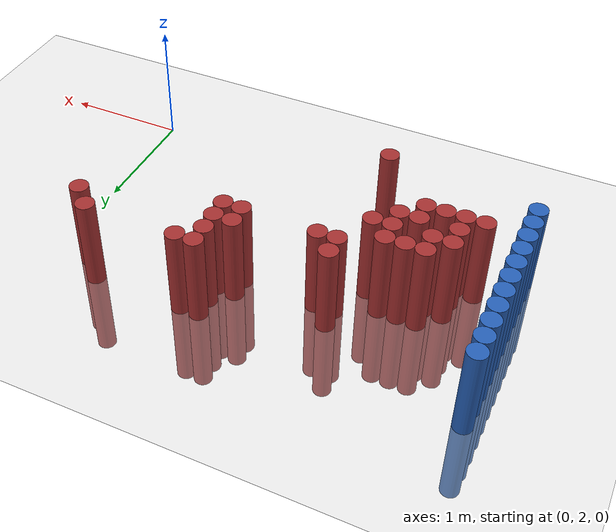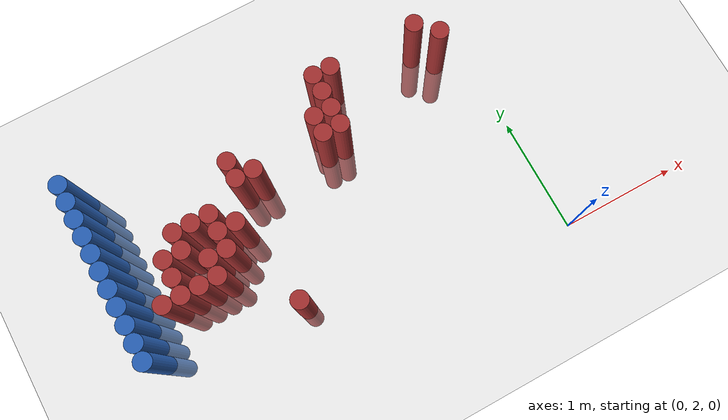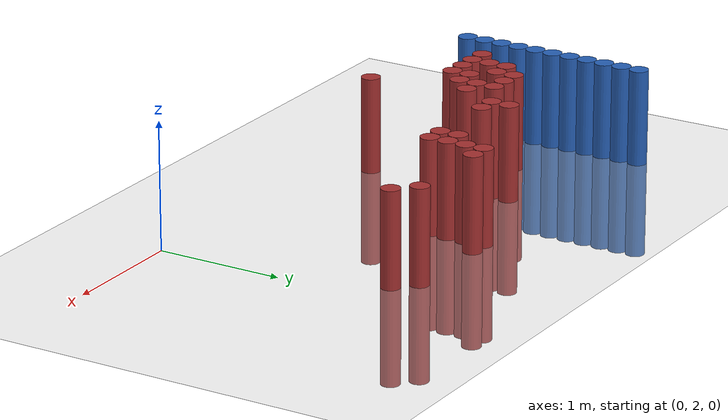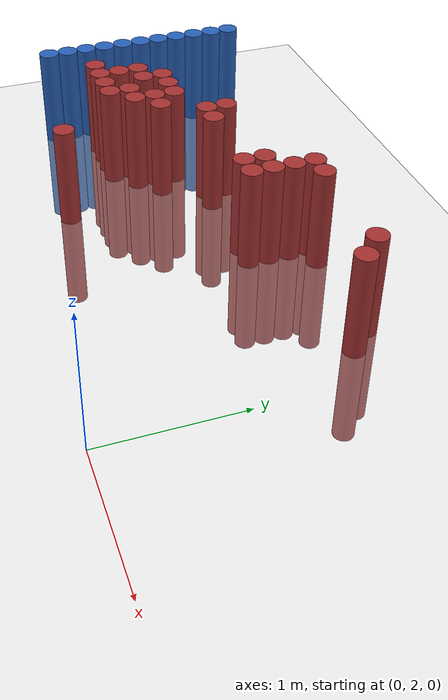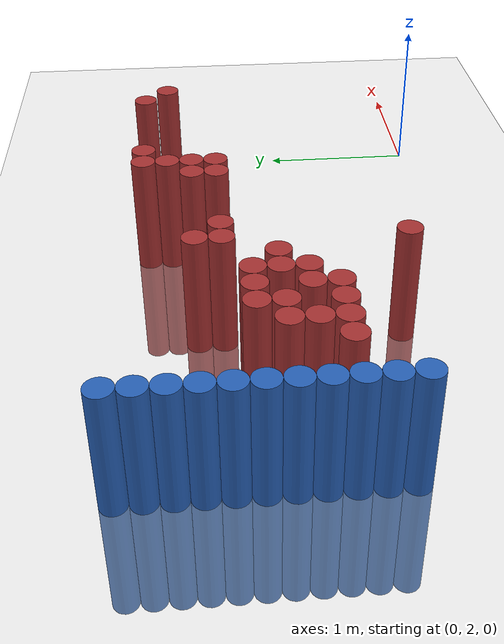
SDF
<sdf version="1.6">
 <world name="default">
  <model name="ground_plane">
   <static>1</static>
   <link name="link">
    <collision name="collision">
     <geometry><plane><normal>0 0 1</normal><size>100 100</size></plane></geometry>
     <surface><friction><ode><mu>100</mu><mu2>50</mu2></ode></friction></surface>
    </collision>
    <visual name="visual">
     <cast_shadows>0</cast_shadows>
     <geometry><plane><normal>0 0 1</normal><size>100 100</size></plane></geometry>
     <material>
      <script><uri>file://media/materials/scripts/gazebo.material</uri><name>Gazebo/Grey</name></script>
     </material>
    </visual>
   </link>
  </model>
  <model name="unit_cylinder_149">
   <static>1</static>
   <pose>-3.425000 2.575000 0.000000 0.000000 0.000000 0.000000</pose>
   <link name="link">
    <inertial>
     <mass>1</mass>
     <inertia><ixx>0.145833</ixx><ixy>0</ixy><ixz>0</ixz><iyy>0.145833</iyy><iyz>0</iyz><izz>0.125</izz></inertia>
    </inertial>
    <collision name="collision">
     <geometry><cylinder><radius>0.075000</radius><length>1.5</length></cylinder></geometry>
    </collision>
    <visual name="visual">
     <geometry><cylinder><radius>0.075000</radius><length>1.5</length></cylinder></geometry>
     <material>
      <ambient>0.152000 0.379000 0.720000 1</ambient>
      <diffuse>0.152000 0.379000 0.720000 1</diffuse>
     </material>
     <material>
      <script><name>Gazebo/Grey</name><uri>file://media/materials/scripts/gazebo.material</uri></script>
     </material>
    </visual>
   </link>
  </model>
  <model name="unit_cylinder_151">
   <static>1</static>
   <pose>-3.425000 2.725000 0.000000 0.000000 0.000000 0.000000</pose>
   <link name="link">
    <inertial>
     <mass>1</mass>
     <inertia><ixx>0.145833</ixx><ixy>0</ixy><ixz>0</ixz><iyy>0.145833</iyy><iyz>0</iyz><izz>0.125</izz></inertia>
    </inertial>
    <collision name="collision">
     <geometry><cylinder><radius>0.075000</radius><length>1.5</length></cylinder></geometry>
    </collision>
    <visual name="visual">
     <geometry><cylinder><radius>0.075000</radius><length>1.5</length></cylinder></geometry>
     <material>
      <ambient>0.152000 0.379000 0.720000 1</ambient>
      <diffuse>0.152000 0.379000 0.720000 1</diffuse>
     </material>
     <material>
      <script><name>Gazebo/Grey</name><uri>file://media/materials/scripts/gazebo.material</uri></script>
     </material>
    </visual>
   </link>
  </model>
  <model name="unit_cylinder_153">
   <static>1</static>
   <pose>-3.425000 2.875000 0.000000 0.000000 0.000000 0.000000</pose>
   <link name="link">
    <inertial>
     <mass>1</mass>
     <inertia><ixx>0.145833</ixx><ixy>0</ixy><ixz>0</ixz><iyy>0.145833</iyy><iyz>0</iyz><izz>0.125</izz></inertia>
    </inertial>
    <collision name="collision">
     <geometry><cylinder><radius>0.075000</radius><length>1.5</length></cylinder></geometry>
    </collision>
    <visual name="visual">
     <geometry><cylinder><radius>0.075000</radius><length>1.5</length></cylinder></geometry>
     <material>
      <ambient>0.152000 0.379000 0.720000 1</ambient>
      <diffuse>0.152000 0.379000 0.720000 1</diffuse>
     </material>
     <material>
      <script><name>Gazebo/Grey</name><uri>file://media/materials/scripts/gazebo.material</uri></script>
     </material>
    </visual>
   </link>
  </model>
  <model name="unit_cylinder_155">
   <static>1</static>
   <pose>-3.425000 3.025000 0.000000 0.000000 0.000000 0.000000</pose>
   <link name="link">
    <inertial>
     <mass>1</mass>
     <inertia><ixx>0.145833</ixx><ixy>0</ixy><ixz>0</ixz><iyy>0.145833</iyy><iyz>0</iyz><izz>0.125</izz></inertia>
    </inertial>
    <collision name="collision">
     <geometry><cylinder><radius>0.075000</radius><length>1.5</length></cylinder></geometry>
    </collision>
    <visual name="visual">
     <geometry><cylinder><radius>0.075000</radius><length>1.5</length></cylinder></geometry>
     <material>
      <ambient>0.152000 0.379000 0.720000 1</ambient>
      <diffuse>0.152000 0.379000 0.720000 1</diffuse>
     </material>
     <material>
      <script><name>Gazebo/Grey</name><uri>file://media/materials/scripts/gazebo.material</uri></script>
     </material>
    </visual>
   </link>
  </model>
  <model name="unit_cylinder_157">
   <static>1</static>
   <pose>-3.425000 3.175000 0.000000 0.000000 0.000000 0.000000</pose>
   <link name="link">
    <inertial>
     <mass>1</mass>
     <inertia><ixx>0.145833</ixx><ixy>0</ixy><ixz>0</ixz><iyy>0.145833</iyy><iyz>0</iyz><izz>0.125</izz></inertia>
    </inertial>
    <collision name="collision">
     <geometry><cylinder><radius>0.075000</radius><length>1.5</length></cylinder></geometry>
    </collision>
    <visual name="visual">
     <geometry><cylinder><radius>0.075000</radius><length>1.5</length></cylinder></geometry>
     <material>
      <ambient>0.152000 0.379000 0.720000 1</ambient>
      <diffuse>0.152000 0.379000 0.720000 1</diffuse>
     </material>
     <material>
      <script><name>Gazebo/Grey</name><uri>file://media/materials/scripts/gazebo.material</uri></script>
     </material>
    </visual>
   </link>
  </model>
  <model name="unit_cylinder_159">
   <static>1</static>
   <pose>-3.425000 3.325000 0.000000 0.000000 0.000000 0.000000</pose>
   <link name="link">
    <inertial>
     <mass>1</mass>
     <inertia><ixx>0.145833</ixx><ixy>0</ixy><ixz>0</ixz><iyy>0.145833</iyy><iyz>0</iyz><izz>0.125</izz></inertia>
    </inertial>
    <collision name="collision">
     <geometry><cylinder><radius>0.075000</radius><length>1.5</length></cylinder></geometry>
    </collision>
    <visual name="visual">
     <geometry><cylinder><radius>0.075000</radius><length>1.5</length></cylinder></geometry>
     <material>
      <ambient>0.152000 0.379000 0.720000 1</ambient>
      <diffuse>0.152000 0.379000 0.720000 1</diffuse>
     </material>
     <material>
      <script><name>Gazebo/Grey</name><uri>file://media/materials/scripts/gazebo.material</uri></script>
     </material>
    </visual>
   </link>
  </model>
  <model name="unit_cylinder_161">
   <static>1</static>
   <pose>-3.425000 3.475000 0.000000 0.000000 0.000000 0.000000</pose>
   <link name="link">
    <inertial>
     <mass>1</mass>
     <inertia><ixx>0.145833</ixx><ixy>0</ixy><ixz>0</ixz><iyy>0.145833</iyy><iyz>0</iyz><izz>0.125</izz></inertia>
    </inertial>
    <collision name="collision">
     <geometry><cylinder><radius>0.075000</radius><length>1.5</length></cylinder></geometry>
    </collision>
    <visual name="visual">
     <geometry><cylinder><radius>0.075000</radius><length>1.5</length></cylinder></geometry>
     <material>
      <ambient>0.152000 0.379000 0.720000 1</ambient>
      <diffuse>0.152000 0.379000 0.720000 1</diffuse>
     </material>
     <material>
      <script><name>Gazebo/Grey</name><uri>file://media/materials/scripts/gazebo.material</uri></script>
     </material>
    </visual>
   </link>
  </model>
  <model name="unit_cylinder_163">
   <static>1</static>
   <pose>-3.425000 3.625000 0.000000 0.000000 0.000000 0.000000</pose>
   <link name="link">
    <inertial>
     <mass>1</mass>
     <inertia><ixx>0.145833</ixx><ixy>0</ixy><ixz>0</ixz><iyy>0.145833</iyy><iyz>0</iyz><izz>0.125</izz></inertia>
    </inertial>
    <collision name="collision">
     <geometry><cylinder><radius>0.075000</radius><length>1.5</length></cylinder></geometry>
    </collision>
    <visual name="visual">
     <geometry><cylinder><radius>0.075000</radius><length>1.5</length></cylinder></geometry>
     <material>
      <ambient>0.152000 0.379000 0.720000 1</ambient>
      <diffuse>0.152000 0.379000 0.720000 1</diffuse>
     </material>
     <material>
      <script><name>Gazebo/Grey</name><uri>file://media/materials/scripts/gazebo.material</uri></script>
     </material>
    </visual>
   </link>
  </model>
  <model name="unit_cylinder_165">
   <static>1</static>
   <pose>-3.425000 3.775000 0.000000 0.000000 0.000000 0.000000</pose>
   <link name="link">
    <inertial>
     <mass>1</mass>
     <inertia><ixx>0.145833</ixx><ixy>0</ixy><ixz>0</ixz><iyy>0.145833</iyy><iyz>0</iyz><izz>0.125</izz></inertia>
    </inertial>
    <collision name="collision">
     <geometry><cylinder><radius>0.075000</radius><length>1.5</length></cylinder></geometry>
    </collision>
    <visual name="visual">
     <geometry><cylinder><radius>0.075000</radius><length>1.5</length></cylinder></geometry>
     <material>
      <ambient>0.152000 0.379000 0.720000 1</ambient>
      <diffuse>0.152000 0.379000 0.720000 1</diffuse>
     </material>
     <material>
      <script><name>Gazebo/Grey</name><uri>file://media/materials/scripts/gazebo.material</uri></script>
     </material>
    </visual>
   </link>
  </model>
  <model name="unit_cylinder_167">
   <static>1</static>
   <pose>-3.425000 3.925000 0.000000 0.000000 0.000000 0.000000</pose>
   <link name="link">
    <inertial>
     <mass>1</mass>
     <inertia><ixx>0.145833</ixx><ixy>0</ixy><ixz>0</ixz><iyy>0.145833</iyy><iyz>0</iyz><izz>0.125</izz></inertia>
    </inertial>
    <collision name="collision">
     <geometry><cylinder><radius>0.075000</radius><length>1.5</length></cylinder></geometry>
    </collision>
    <visual name="visual">
     <geometry><cylinder><radius>0.075000</radius><length>1.5</length></cylinder></geometry>
     <material>
      <ambient>0.152000 0.379000 0.720000 1</ambient>
      <diffuse>0.152000 0.379000 0.720000 1</diffuse>
     </material>
     <material>
      <script><name>Gazebo/Grey</name><uri>file://media/materials/scripts/gazebo.material</uri></script>
     </material>
    </visual>
   </link>
  </model>
  <model name="unit_cylinder_169">
   <static>1</static>
   <pose>-3.425000 4.075000 0.000000 0.000000 0.000000 0.000000</pose>
   <link name="link">
    <inertial>
     <mass>1</mass>
     <inertia><ixx>0.145833</ixx><ixy>0</ixy><ixz>0</ixz><iyy>0.145833</iyy><iyz>0</iyz><izz>0.125</izz></inertia>
    </inertial>
    <collision name="collision">
     <geometry><cylinder><radius>0.075000</radius><length>1.5</length></cylinder></geometry>
    </collision>
    <visual name="visual">
     <geometry><cylinder><radius>0.075000</radius><length>1.5</length></cylinder></geometry>
     <material>
      <ambient>0.152000 0.379000 0.720000 1</ambient>
      <diffuse>0.152000 0.379000 0.720000 1</diffuse>
     </material>
     <material>
      <script><name>Gazebo/Grey</name><uri>file://media/materials/scripts/gazebo.material</uri></script>
     </material>
    </visual>
   </link>
  </model>
  <model name="unit_cylinder_238">
   <static>1</static>
   <pose>-3.425000 2.575000 0.000000 0.000000 0.000000 0.000000</pose>
   <link name="link">
    <inertial>
     <mass>1</mass>
     <inertia><ixx>0.145833</ixx><ixy>0</ixy><ixz>0</ixz><iyy>0.145833</iyy><iyz>0</iyz><izz>0.125</izz></inertia>
    </inertial>
    <collision name="collision">
     <geometry><cylinder><radius>0.075000</radius><length>1.5</length></cylinder></geometry>
    </collision>
    <visual name="visual">
     <geometry><cylinder><radius>0.075000</radius><length>1.5</length></cylinder></geometry>
     <material>
      <ambient>0.152000 0.379000 0.720000 1</ambient>
      <diffuse>0.152000 0.379000 0.720000 1</diffuse>
     </material>
     <material>
      <script><name>Gazebo/Grey</name><uri>file://media/materials/scripts/gazebo.material</uri></script>
     </material>
    </visual>
   </link>
  </model>
  <model name="unit_cylinder_239">
   <static>1</static>
   <pose>-3.425000 2.725000 0.000000 0.000000 0.000000 0.000000</pose>
   <link name="link">
    <inertial>
     <mass>1</mass>
     <inertia><ixx>0.145833</ixx><ixy>0</ixy><ixz>0</ixz><iyy>0.145833</iyy><iyz>0</iyz><izz>0.125</izz></inertia>
    </inertial>
    <collision name="collision">
     <geometry><cylinder><radius>0.075000</radius><length>1.5</length></cylinder></geometry>
    </collision>
    <visual name="visual">
     <geometry><cylinder><radius>0.075000</radius><length>1.5</length></cylinder></geometry>
     <material>
      <ambient>0.152000 0.379000 0.720000 1</ambient>
      <diffuse>0.152000 0.379000 0.720000 1</diffuse>
     </material>
     <material>
      <script><name>Gazebo/Grey</name><uri>file://media/materials/scripts/gazebo.material</uri></script>
     </material>
    </visual>
   </link>
  </model>
  <model name="unit_cylinder_240">
   <static>1</static>
   <pose>-3.425000 2.875000 0.000000 0.000000 0.000000 0.000000</pose>
   <link name="link">
    <inertial>
     <mass>1</mass>
     <inertia><ixx>0.145833</ixx><ixy>0</ixy><ixz>0</ixz><iyy>0.145833</iyy><iyz>0</iyz><izz>0.125</izz></inertia>
    </inertial>
    <collision name="collision">
     <geometry><cylinder><radius>0.075000</radius><length>1.5</length></cylinder></geometry>
    </collision>
    <visual name="visual">
     <geometry><cylinder><radius>0.075000</radius><length>1.5</length></cylinder></geometry>
     <material>
      <ambient>0.152000 0.379000 0.720000 1</ambient>
      <diffuse>0.152000 0.379000 0.720000 1</diffuse>
     </material>
     <material>
      <script><name>Gazebo/Grey</name><uri>file://media/materials/scripts/gazebo.material</uri></script>
     </material>
    </visual>
   </link>
  </model>
  <model name="unit_cylinder_241">
   <static>1</static>
   <pose>-3.425000 3.025000 0.000000 0.000000 0.000000 0.000000</pose>
   <link name="link">
    <inertial>
     <mass>1</mass>
     <inertia><ixx>0.145833</ixx><ixy>0</ixy><ixz>0</ixz><iyy>0.145833</iyy><iyz>0</iyz><izz>0.125</izz></inertia>
    </inertial>
    <collision name="collision">
     <geometry><cylinder><radius>0.075000</radius><length>1.5</length></cylinder></geometry>
    </collision>
    <visual name="visual">
     <geometry><cylinder><radius>0.075000</radius><length>1.5</length></cylinder></geometry>
     <material>
      <ambient>0.152000 0.379000 0.720000 1</ambient>
      <diffuse>0.152000 0.379000 0.720000 1</diffuse>
     </material>
     <material>
      <script><name>Gazebo/Grey</name><uri>file://media/materials/scripts/gazebo.material</uri></script>
     </material>
    </visual>
   </link>
  </model>
  <model name="unit_cylinder_242">
   <static>1</static>
   <pose>-3.425000 3.175000 0.000000 0.000000 0.000000 0.000000</pose>
   <link name="link">
    <inertial>
     <mass>1</mass>
     <inertia><ixx>0.145833</ixx><ixy>0</ixy><ixz>0</ixz><iyy>0.145833</iyy><iyz>0</iyz><izz>0.125</izz></inertia>
    </inertial>
    <collision name="collision">
     <geometry><cylinder><radius>0.075000</radius><length>1.5</length></cylinder></geometry>
    </collision>
    <visual name="visual">
     <geometry><cylinder><radius>0.075000</radius><length>1.5</length></cylinder></geometry>
     <material>
      <ambient>0.152000 0.379000 0.720000 1</ambient>
      <diffuse>0.152000 0.379000 0.720000 1</diffuse>
     </material>
     <material>
      <script><name>Gazebo/Grey</name><uri>file://media/materials/scripts/gazebo.material</uri></script>
     </material>
    </visual>
   </link>
  </model>
  <model name="unit_cylinder_243">
   <static>1</static>
   <pose>-3.425000 3.325000 0.000000 0.000000 0.000000 0.000000</pose>
   <link name="link">
    <inertial>
     <mass>1</mass>
     <inertia><ixx>0.145833</ixx><ixy>0</ixy><ixz>0</ixz><iyy>0.145833</iyy><iyz>0</iyz><izz>0.125</izz></inertia>
    </inertial>
    <collision name="collision">
     <geometry><cylinder><radius>0.075000</radius><length>1.5</length></cylinder></geometry>
    </collision>
    <visual name="visual">
     <geometry><cylinder><radius>0.075000</radius><length>1.5</length></cylinder></geometry>
     <material>
      <ambient>0.152000 0.379000 0.720000 1</ambient>
      <diffuse>0.152000 0.379000 0.720000 1</diffuse>
     </material>
     <material>
      <script><name>Gazebo/Grey</name><uri>file://media/materials/scripts/gazebo.material</uri></script>
     </material>
    </visual>
   </link>
  </model>
  <model name="unit_cylinder_244">
   <static>1</static>
   <pose>-3.425000 3.475000 0.000000 0.000000 0.000000 0.000000</pose>
   <link name="link">
    <inertial>
     <mass>1</mass>
     <inertia><ixx>0.145833</ixx><ixy>0</ixy><ixz>0</ixz><iyy>0.145833</iyy><iyz>0</iyz><izz>0.125</izz></inertia>
    </inertial>
    <collision name="collision">
     <geometry><cylinder><radius>0.075000</radius><length>1.5</length></cylinder></geometry>
    </collision>
    <visual name="visual">
     <geometry><cylinder><radius>0.075000</radius><length>1.5</length></cylinder></geometry>
     <material>
      <ambient>0.152000 0.379000 0.720000 1</ambient>
      <diffuse>0.152000 0.379000 0.720000 1</diffuse>
     </material>
     <material>
      <script><name>Gazebo/Grey</name><uri>file://media/materials/scripts/gazebo.material</uri></script>
     </material>
    </visual>
   </link>
  </model>
  <model name="unit_cylinder_245">
   <static>1</static>
   <pose>-3.425000 3.625000 0.000000 0.000000 0.000000 0.000000</pose>
   <link name="link">
    <inertial>
     <mass>1</mass>
     <inertia><ixx>0.145833</ixx><ixy>0</ixy><ixz>0</ixz><iyy>0.145833</iyy><iyz>0</iyz><izz>0.125</izz></inertia>
    </inertial>
    <collision name="collision">
     <geometry><cylinder><radius>0.075000</radius><length>1.5</length></cylinder></geometry>
    </collision>
    <visual name="visual">
     <geometry><cylinder><radius>0.075000</radius><length>1.5</length></cylinder></geometry>
     <material>
      <ambient>0.152000 0.379000 0.720000 1</ambient>
      <diffuse>0.152000 0.379000 0.720000 1</diffuse>
     </material>
     <material>
      <script><name>Gazebo/Grey</name><uri>file://media/materials/scripts/gazebo.material</uri></script>
     </material>
    </visual>
   </link>
  </model>
  <model name="unit_cylinder_246">
   <static>1</static>
   <pose>-3.425000 3.775000 0.000000 0.000000 0.000000 0.000000</pose>
   <link name="link">
    <inertial>
     <mass>1</mass>
     <inertia><ixx>0.145833</ixx><ixy>0</ixy><ixz>0</ixz><iyy>0.145833</iyy><iyz>0</iyz><izz>0.125</izz></inertia>
    </inertial>
    <collision name="collision">
     <geometry><cylinder><radius>0.075000</radius><length>1.5</length></cylinder></geometry>
    </collision>
    <visual name="visual">
     <geometry><cylinder><radius>0.075000</radius><length>1.5</length></cylinder></geometry>
     <material>
      <ambient>0.152000 0.379000 0.720000 1</ambient>
      <diffuse>0.152000 0.379000 0.720000 1</diffuse>
     </material>
     <material>
      <script><name>Gazebo/Grey</name><uri>file://media/materials/scripts/gazebo.material</uri></script>
     </material>
    </visual>
   </link>
  </model>
  <model name="unit_cylinder_247">
   <static>1</static>
   <pose>-3.425000 3.925000 0.000000 0.000000 0.000000 0.000000</pose>
   <link name="link">
    <inertial>
     <mass>1</mass>
     <inertia><ixx>0.145833</ixx><ixy>0</ixy><ixz>0</ixz><iyy>0.145833</iyy><iyz>0</iyz><izz>0.125</izz></inertia>
    </inertial>
    <collision name="collision">
     <geometry><cylinder><radius>0.075000</radius><length>1.5</length></cylinder></geometry>
    </collision>
    <visual name="visual">
     <geometry><cylinder><radius>0.075000</radius><length>1.5</length></cylinder></geometry>
     <material>
      <ambient>0.152000 0.379000 0.720000 1</ambient>
      <diffuse>0.152000 0.379000 0.720000 1</diffuse>
     </material>
     <material>
      <script><name>Gazebo/Grey</name><uri>file://media/materials/scripts/gazebo.material</uri></script>
     </material>
    </visual>
   </link>
  </model>
  <model name="unit_cylinder_248">
   <static>1</static>
   <pose>-3.425000 4.075000 0.000000 0.000000 0.000000 0.000000</pose>
   <link name="link">
    <inertial>
     <mass>1</mass>
     <inertia><ixx>0.145833</ixx><ixy>0</ixy><ixz>0</ixz><iyy>0.145833</iyy><iyz>0</iyz><izz>0.125</izz></inertia>
    </inertial>
    <collision name="collision">
     <geometry><cylinder><radius>0.075000</radius><length>1.5</length></cylinder></geometry>
    </collision>
    <visual name="visual">
     <geometry><cylinder><radius>0.075000</radius><length>1.5</length></cylinder></geometry>
     <material>
      <ambient>0.152000 0.379000 0.720000 1</ambient>
      <diffuse>0.152000 0.379000 0.720000 1</diffuse>
     </material>
     <material>
      <script><name>Gazebo/Grey</name><uri>file://media/materials/scripts/gazebo.material</uri></script>
     </material>
    </visual>
   </link>
  </model>
  <model name="unit_cylinder_280">
   <static>1</static>
   <pose>-3.125000 2.875000 0.000000 0.000000 0.000000 0.000000</pose>
   <link name="link">
    <inertial>
     <mass>1</mass>
     <inertia><ixx>0.145833</ixx><ixy>0</ixy><ixz>0</ixz><iyy>0.145833</iyy><iyz>0</iyz><izz>0.125</izz></inertia>
    </inertial>
    <collision name="collision">
     <geometry><cylinder><radius>0.075000</radius><length>1.5</length></cylinder></geometry>
    </collision>
    <visual name="visual">
     <geometry><cylinder><radius>0.075000</radius><length>1.5</length></cylinder></geometry>
     <material>
      <ambient>0.648000 0.192000 0.192000 1</ambient>
      <diffuse>0.648000 0.192000 0.192000 1</diffuse>
     </material>
     <material>
      <script><name>Gazebo/Grey</name><uri>file://media/materials/scripts/gazebo.material</uri></script>
     </material>
    </visual>
   </link>
  </model>
  <model name="unit_cylinder_281">
   <static>1</static>
   <pose>-2.975000 2.875000 0.000000 0.000000 0.000000 0.000000</pose>
   <link name="link">
    <inertial>
     <mass>1</mass>
     <inertia><ixx>0.145833</ixx><ixy>0</ixy><ixz>0</ixz><iyy>0.145833</iyy><iyz>0</iyz><izz>0.125</izz></inertia>
    </inertial>
    <collision name="collision">
     <geometry><cylinder><radius>0.075000</radius><length>1.5</length></cylinder></geometry>
    </collision>
    <visual name="visual">
     <geometry><cylinder><radius>0.075000</radius><length>1.5</length></cylinder></geometry>
     <material>
      <ambient>0.648000 0.192000 0.192000 1</ambient>
      <diffuse>0.648000 0.192000 0.192000 1</diffuse>
     </material>
     <material>
      <script><name>Gazebo/Grey</name><uri>file://media/materials/scripts/gazebo.material</uri></script>
     </material>
    </visual>
   </link>
  </model>
  <model name="unit_cylinder_282">
   <static>1</static>
   <pose>-2.975000 3.025000 0.000000 0.000000 0.000000 0.000000</pose>
   <link name="link">
    <inertial>
     <mass>1</mass>
     <inertia><ixx>0.145833</ixx><ixy>0</ixy><ixz>0</ixz><iyy>0.145833</iyy><iyz>0</iyz><izz>0.125</izz></inertia>
    </inertial>
    <collision name="collision">
     <geometry><cylinder><radius>0.075000</radius><length>1.5</length></cylinder></geometry>
    </collision>
    <visual name="visual">
     <geometry><cylinder><radius>0.075000</radius><length>1.5</length></cylinder></geometry>
     <material>
      <ambient>0.648000 0.192000 0.192000 1</ambient>
      <diffuse>0.648000 0.192000 0.192000 1</diffuse>
     </material>
     <material>
      <script><name>Gazebo/Grey</name><uri>file://media/materials/scripts/gazebo.material</uri></script>
     </material>
    </visual>
   </link>
  </model>
  <model name="unit_cylinder_283">
   <static>1</static>
   <pose>-2.975000 3.175000 0.000000 0.000000 0.000000 0.000000</pose>
   <link name="link">
    <inertial>
     <mass>1</mass>
     <inertia><ixx>0.145833</ixx><ixy>0</ixy><ixz>0</ixz><iyy>0.145833</iyy><iyz>0</iyz><izz>0.125</izz></inertia>
    </inertial>
    <collision name="collision">
     <geometry><cylinder><radius>0.075000</radius><length>1.5</length></cylinder></geometry>
    </collision>
    <visual name="visual">
     <geometry><cylinder><radius>0.075000</radius><length>1.5</length></cylinder></geometry>
     <material>
      <ambient>0.648000 0.192000 0.192000 1</ambient>
      <diffuse>0.648000 0.192000 0.192000 1</diffuse>
     </material>
     <material>
      <script><name>Gazebo/Grey</name><uri>file://media/materials/scripts/gazebo.material</uri></script>
     </material>
    </visual>
   </link>
  </model>
  <model name="unit_cylinder_284">
   <static>1</static>
   <pose>-2.825000 2.875000 0.000000 0.000000 0.000000 0.000000</pose>
   <link name="link">
    <inertial>
     <mass>1</mass>
     <inertia><ixx>0.145833</ixx><ixy>0</ixy><ixz>0</ixz><iyy>0.145833</iyy><iyz>0</iyz><izz>0.125</izz></inertia>
    </inertial>
    <collision name="collision">
     <geometry><cylinder><radius>0.075000</radius><length>1.5</length></cylinder></geometry>
    </collision>
    <visual name="visual">
     <geometry><cylinder><radius>0.075000</radius><length>1.5</length></cylinder></geometry>
     <material>
      <ambient>0.648000 0.192000 0.192000 1</ambient>
      <diffuse>0.648000 0.192000 0.192000 1</diffuse>
     </material>
     <material>
      <script><name>Gazebo/Grey</name><uri>file://media/materials/scripts/gazebo.material</uri></script>
     </material>
    </visual>
   </link>
  </model>
  <model name="unit_cylinder_285">
   <static>1</static>
   <pose>-2.825000 3.175000 0.000000 0.000000 0.000000 0.000000</pose>
   <link name="link">
    <inertial>
     <mass>1</mass>
     <inertia><ixx>0.145833</ixx><ixy>0</ixy><ixz>0</ixz><iyy>0.145833</iyy><iyz>0</iyz><izz>0.125</izz></inertia>
    </inertial>
    <collision name="collision">
     <geometry><cylinder><radius>0.075000</radius><length>1.5</length></cylinder></geometry>
    </collision>
    <visual name="visual">
     <geometry><cylinder><radius>0.075000</radius><length>1.5</length></cylinder></geometry>
     <material>
      <ambient>0.648000 0.192000 0.192000 1</ambient>
      <diffuse>0.648000 0.192000 0.192000 1</diffuse>
     </material>
     <material>
      <script><name>Gazebo/Grey</name><uri>file://media/materials/scripts/gazebo.material</uri></script>
     </material>
    </visual>
   </link>
  </model>
  <model name="unit_cylinder_286">
   <static>1</static>
   <pose>-2.825000 3.325000 0.000000 0.000000 0.000000 0.000000</pose>
   <link name="link">
    <inertial>
     <mass>1</mass>
     <inertia><ixx>0.145833</ixx><ixy>0</ixy><ixz>0</ixz><iyy>0.145833</iyy><iyz>0</iyz><izz>0.125</izz></inertia>
    </inertial>
    <collision name="collision">
     <geometry><cylinder><radius>0.075000</radius><length>1.5</length></cylinder></geometry>
    </collision>
    <visual name="visual">
     <geometry><cylinder><radius>0.075000</radius><length>1.5</length></cylinder></geometry>
     <material>
      <ambient>0.648000 0.192000 0.192000 1</ambient>
      <diffuse>0.648000 0.192000 0.192000 1</diffuse>
     </material>
     <material>
      <script><name>Gazebo/Grey</name><uri>file://media/materials/scripts/gazebo.material</uri></script>
     </material>
    </visual>
   </link>
  </model>
  <model name="unit_cylinder_292">
   <static>1</static>
   <pose>-2.675000 2.875000 0.000000 0.000000 0.000000 0.000000</pose>
   <link name="link">
    <inertial>
     <mass>1</mass>
     <inertia><ixx>0.145833</ixx><ixy>0</ixy><ixz>0</ixz><iyy>0.145833</iyy><iyz>0</iyz><izz>0.125</izz></inertia>
    </inertial>
    <collision name="collision">
     <geometry><cylinder><radius>0.075000</radius><length>1.5</length></cylinder></geometry>
    </collision>
    <visual name="visual">
     <geometry><cylinder><radius>0.075000</radius><length>1.5</length></cylinder></geometry>
     <material>
      <ambient>0.648000 0.192000 0.192000 1</ambient>
      <diffuse>0.648000 0.192000 0.192000 1</diffuse>
     </material>
     <material>
      <script><name>Gazebo/Grey</name><uri>file://media/materials/scripts/gazebo.material</uri></script>
     </material>
    </visual>
   </link>
  </model>
  <model name="unit_cylinder_293">
   <static>1</static>
   <pose>-2.675000 3.025000 0.000000 0.000000 0.000000 0.000000</pose>
   <link name="link">
    <inertial>
     <mass>1</mass>
     <inertia><ixx>0.145833</ixx><ixy>0</ixy><ixz>0</ixz><iyy>0.145833</iyy><iyz>0</iyz><izz>0.125</izz></inertia>
    </inertial>
    <collision name="collision">
     <geometry><cylinder><radius>0.075000</radius><length>1.5</length></cylinder></geometry>
    </collision>
    <visual name="visual">
     <geometry><cylinder><radius>0.075000</radius><length>1.5</length></cylinder></geometry>
     <material>
      <ambient>0.648000 0.192000 0.192000 1</ambient>
      <diffuse>0.648000 0.192000 0.192000 1</diffuse>
     </material>
     <material>
      <script><name>Gazebo/Grey</name><uri>file://media/materials/scripts/gazebo.material</uri></script>
     </material>
    </visual>
   </link>
  </model>
  <model name="unit_cylinder_294">
   <static>1</static>
   <pose>-2.675000 3.325000 0.000000 0.000000 0.000000 0.000000</pose>
   <link name="link">
    <inertial>
     <mass>1</mass>
     <inertia><ixx>0.145833</ixx><ixy>0</ixy><ixz>0</ixz><iyy>0.145833</iyy><iyz>0</iyz><izz>0.125</izz></inertia>
    </inertial>
    <collision name="collision">
     <geometry><cylinder><radius>0.075000</radius><length>1.5</length></cylinder></geometry>
    </collision>
    <visual name="visual">
     <geometry><cylinder><radius>0.075000</radius><length>1.5</length></cylinder></geometry>
     <material>
      <ambient>0.648000 0.192000 0.192000 1</ambient>
      <diffuse>0.648000 0.192000 0.192000 1</diffuse>
     </material>
     <material>
      <script><name>Gazebo/Grey</name><uri>file://media/materials/scripts/gazebo.material</uri></script>
     </material>
    </visual>
   </link>
  </model>
  <model name="unit_cylinder_301">
   <static>1</static>
   <pose>-2.525000 3.025000 0.000000 0.000000 0.000000 0.000000</pose>
   <link name="link">
    <inertial>
     <mass>1</mass>
     <inertia><ixx>0.145833</ixx><ixy>0</ixy><ixz>0</ixz><iyy>0.145833</iyy><iyz>0</iyz><izz>0.125</izz></inertia>
    </inertial>
    <collision name="collision">
     <geometry><cylinder><radius>0.075000</radius><length>1.5</length></cylinder></geometry>
    </collision>
    <visual name="visual">
     <geometry><cylinder><radius>0.075000</radius><length>1.5</length></cylinder></geometry>
     <material>
      <ambient>0.648000 0.192000 0.192000 1</ambient>
      <diffuse>0.648000 0.192000 0.192000 1</diffuse>
     </material>
     <material>
      <script><name>Gazebo/Grey</name><uri>file://media/materials/scripts/gazebo.material</uri></script>
     </material>
    </visual>
   </link>
  </model>
  <model name="unit_cylinder_302">
   <static>1</static>
   <pose>-2.525000 3.175000 0.000000 0.000000 0.000000 0.000000</pose>
   <link name="link">
    <inertial>
     <mass>1</mass>
     <inertia><ixx>0.145833</ixx><ixy>0</ixy><ixz>0</ixz><iyy>0.145833</iyy><iyz>0</iyz><izz>0.125</izz></inertia>
    </inertial>
    <collision name="collision">
     <geometry><cylinder><radius>0.075000</radius><length>1.5</length></cylinder></geometry>
    </collision>
    <visual name="visual">
     <geometry><cylinder><radius>0.075000</radius><length>1.5</length></cylinder></geometry>
     <material>
      <ambient>0.648000 0.192000 0.192000 1</ambient>
      <diffuse>0.648000 0.192000 0.192000 1</diffuse>
     </material>
     <material>
      <script><name>Gazebo/Grey</name><uri>file://media/materials/scripts/gazebo.material</uri></script>
     </material>
    </visual>
   </link>
  </model>
  <model name="unit_cylinder_303">
   <static>1</static>
   <pose>-2.525000 3.325000 0.000000 0.000000 0.000000 0.000000</pose>
   <link name="link">
    <inertial>
     <mass>1</mass>
     <inertia><ixx>0.145833</ixx><ixy>0</ixy><ixz>0</ixz><iyy>0.145833</iyy><iyz>0</iyz><izz>0.125</izz></inertia>
    </inertial>
    <collision name="collision">
     <geometry><cylinder><radius>0.075000</radius><length>1.5</length></cylinder></geometry>
    </collision>
    <visual name="visual">
     <geometry><cylinder><radius>0.075000</radius><length>1.5</length></cylinder></geometry>
     <material>
      <ambient>0.648000 0.192000 0.192000 1</ambient>
      <diffuse>0.648000 0.192000 0.192000 1</diffuse>
     </material>
     <material>
      <script><name>Gazebo/Grey</name><uri>file://media/materials/scripts/gazebo.material</uri></script>
     </material>
    </visual>
   </link>
  </model>
  <model name="unit_cylinder_313">
   <static>1</static>
   <pose>-2.375000 3.175000 0.000000 0.000000 0.000000 0.000000</pose>
   <link name="link">
    <inertial>
     <mass>1</mass>
     <inertia><ixx>0.145833</ixx><ixy>0</ixy><ixz>0</ixz><iyy>0.145833</iyy><iyz>0</iyz><izz>0.125</izz></inertia>
    </inertial>
    <collision name="collision">
     <geometry><cylinder><radius>0.075000</radius><length>1.5</length></cylinder></geometry>
    </collision>
    <visual name="visual">
     <geometry><cylinder><radius>0.075000</radius><length>1.5</length></cylinder></geometry>
     <material>
      <ambient>0.648000 0.192000 0.192000 1</ambient>
      <diffuse>0.648000 0.192000 0.192000 1</diffuse>
     </material>
     <material>
      <script><name>Gazebo/Grey</name><uri>file://media/materials/scripts/gazebo.material</uri></script>
     </material>
    </visual>
   </link>
  </model>
  <model name="unit_cylinder_322">
   <static>1</static>
   <pose>-2.225000 2.425000 0.000000 0.000000 0.000000 0.000000</pose>
   <link name="link">
    <inertial>
     <mass>1</mass>
     <inertia><ixx>0.145833</ixx><ixy>0</ixy><ixz>0</ixz><iyy>0.145833</iyy><iyz>0</iyz><izz>0.125</izz></inertia>
    </inertial>
    <collision name="collision">
     <geometry><cylinder><radius>0.075000</radius><length>1.5</length></cylinder></geometry>
    </collision>
    <visual name="visual">
     <geometry><cylinder><radius>0.075000</radius><length>1.5</length></cylinder></geometry>
     <material>
      <ambient>0.648000 0.192000 0.192000 1</ambient>
      <diffuse>0.648000 0.192000 0.192000 1</diffuse>
     </material>
     <material>
      <script><name>Gazebo/Grey</name><uri>file://media/materials/scripts/gazebo.material</uri></script>
     </material>
    </visual>
   </link>
  </model>
  <model name="unit_cylinder_323">
   <static>1</static>
   <pose>-2.225000 3.475000 0.000000 0.000000 0.000000 0.000000</pose>
   <link name="link">
    <inertial>
     <mass>1</mass>
     <inertia><ixx>0.145833</ixx><ixy>0</ixy><ixz>0</ixz><iyy>0.145833</iyy><iyz>0</iyz><izz>0.125</izz></inertia>
    </inertial>
    <collision name="collision">
     <geometry><cylinder><radius>0.075000</radius><length>1.5</length></cylinder></geometry>
    </collision>
    <visual name="visual">
     <geometry><cylinder><radius>0.075000</radius><length>1.5</length></cylinder></geometry>
     <material>
      <ambient>0.648000 0.192000 0.192000 1</ambient>
      <diffuse>0.648000 0.192000 0.192000 1</diffuse>
     </material>
     <material>
      <script><name>Gazebo/Grey</name><uri>file://media/materials/scripts/gazebo.material</uri></script>
     </material>
    </visual>
   </link>
  </model>
  <model name="unit_cylinder_324">
   <static>1</static>
   <pose>-2.225000 3.625000 0.000000 0.000000 0.000000 0.000000</pose>
   <link name="link">
    <inertial>
     <mass>1</mass>
     <inertia><ixx>0.145833</ixx><ixy>0</ixy><ixz>0</ixz><iyy>0.145833</iyy><iyz>0</iyz><izz>0.125</izz></inertia>
    </inertial>
    <collision name="collision">
     <geometry><cylinder><radius>0.075000</radius><length>1.5</length></cylinder></geometry>
    </collision>
    <visual name="visual">
     <geometry><cylinder><radius>0.075000</radius><length>1.5</length></cylinder></geometry>
     <material>
      <ambient>0.648000 0.192000 0.192000 1</ambient>
      <diffuse>0.648000 0.192000 0.192000 1</diffuse>
     </material>
     <material>
      <script><name>Gazebo/Grey</name><uri>file://media/materials/scripts/gazebo.material</uri></script>
     </material>
    </visual>
   </link>
  </model>
  <model name="unit_cylinder_328">
   <static>1</static>
   <pose>-2.075000 3.475000 0.000000 0.000000 0.000000 0.000000</pose>
   <link name="link">
    <inertial>
     <mass>1</mass>
     <inertia><ixx>0.145833</ixx><ixy>0</ixy><ixz>0</ixz><iyy>0.145833</iyy><iyz>0</iyz><izz>0.125</izz></inertia>
    </inertial>
    <collision name="collision">
     <geometry><cylinder><radius>0.075000</radius><length>1.5</length></cylinder></geometry>
    </collision>
    <visual name="visual">
     <geometry><cylinder><radius>0.075000</radius><length>1.5</length></cylinder></geometry>
     <material>
      <ambient>0.648000 0.192000 0.192000 1</ambient>
      <diffuse>0.648000 0.192000 0.192000 1</diffuse>
     </material>
     <material>
      <script><name>Gazebo/Grey</name><uri>file://media/materials/scripts/gazebo.material</uri></script>
     </material>
    </visual>
   </link>
  </model>
  <model name="unit_cylinder_342">
   <static>1</static>
   <pose>-1.475000 3.475000 0.000000 0.000000 0.000000 0.000000</pose>
   <link name="link">
    <inertial>
     <mass>1</mass>
     <inertia><ixx>0.145833</ixx><ixy>0</ixy><ixz>0</ixz><iyy>0.145833</iyy><iyz>0</iyz><izz>0.125</izz></inertia>
    </inertial>
    <collision name="collision">
     <geometry><cylinder><radius>0.075000</radius><length>1.5</length></cylinder></geometry>
    </collision>
    <visual name="visual">
     <geometry><cylinder><radius>0.075000</radius><length>1.5</length></cylinder></geometry>
     <material>
      <ambient>0.648000 0.192000 0.192000 1</ambient>
      <diffuse>0.648000 0.192000 0.192000 1</diffuse>
     </material>
     <material>
      <script><name>Gazebo/Grey</name><uri>file://media/materials/scripts/gazebo.material</uri></script>
     </material>
    </visual>
   </link>
  </model>
  <model name="unit_cylinder_343">
   <static>1</static>
   <pose>-1.475000 3.625000 0.000000 0.000000 0.000000 0.000000</pose>
   <link name="link">
    <inertial>
     <mass>1</mass>
     <inertia><ixx>0.145833</ixx><ixy>0</ixy><ixz>0</ixz><iyy>0.145833</iyy><iyz>0</iyz><izz>0.125</izz></inertia>
    </inertial>
    <collision name="collision">
     <geometry><cylinder><radius>0.075000</radius><length>1.5</length></cylinder></geometry>
    </collision>
    <visual name="visual">
     <geometry><cylinder><radius>0.075000</radius><length>1.5</length></cylinder></geometry>
     <material>
      <ambient>0.648000 0.192000 0.192000 1</ambient>
      <diffuse>0.648000 0.192000 0.192000 1</diffuse>
     </material>
     <material>
      <script><name>Gazebo/Grey</name><uri>file://media/materials/scripts/gazebo.material</uri></script>
     </material>
    </visual>
   </link>
  </model>
  <model name="unit_cylinder_344">
   <static>1</static>
   <pose>-1.325000 3.475000 0.000000 0.000000 0.000000 0.000000</pose>
   <link name="link">
    <inertial>
     <mass>1</mass>
     <inertia><ixx>0.145833</ixx><ixy>0</ixy><ixz>0</ixz><iyy>0.145833</iyy><iyz>0</iyz><izz>0.125</izz></inertia>
    </inertial>
    <collision name="collision">
     <geometry><cylinder><radius>0.075000</radius><length>1.5</length></cylinder></geometry>
    </collision>
    <visual name="visual">
     <geometry><cylinder><radius>0.075000</radius><length>1.5</length></cylinder></geometry>
     <material>
      <ambient>0.648000 0.192000 0.192000 1</ambient>
      <diffuse>0.648000 0.192000 0.192000 1</diffuse>
     </material>
     <material>
      <script><name>Gazebo/Grey</name><uri>file://media/materials/scripts/gazebo.material</uri></script>
     </material>
    </visual>
   </link>
  </model>
  <model name="unit_cylinder_345">
   <static>1</static>
   <pose>-1.325000 3.625000 0.000000 0.000000 0.000000 0.000000</pose>
   <link name="link">
    <inertial>
     <mass>1</mass>
     <inertia><ixx>0.145833</ixx><ixy>0</ixy><ixz>0</ixz><iyy>0.145833</iyy><iyz>0</iyz><izz>0.125</izz></inertia>
    </inertial>
    <collision name="collision">
     <geometry><cylinder><radius>0.075000</radius><length>1.5</length></cylinder></geometry>
    </collision>
    <visual name="visual">
     <geometry><cylinder><radius>0.075000</radius><length>1.5</length></cylinder></geometry>
     <material>
      <ambient>0.648000 0.192000 0.192000 1</ambient>
      <diffuse>0.648000 0.192000 0.192000 1</diffuse>
     </material>
     <material>
      <script><name>Gazebo/Grey</name><uri>file://media/materials/scripts/gazebo.material</uri></script>
     </material>
    </visual>
   </link>
  </model>
  <model name="unit_cylinder_346">
   <static>1</static>
   <pose>-1.325000 3.775000 0.000000 0.000000 0.000000 0.000000</pose>
   <link name="link">
    <inertial>
     <mass>1</mass>
     <inertia><ixx>0.145833</ixx><ixy>0</ixy><ixz>0</ixz><iyy>0.145833</iyy><iyz>0</iyz><izz>0.125</izz></inertia>
    </inertial>
    <collision name="collision">
     <geometry><cylinder><radius>0.075000</radius><length>1.5</length></cylinder></geometry>
    </collision>
    <visual name="visual">
     <geometry><cylinder><radius>0.075000</radius><length>1.5</length></cylinder></geometry>
     <material>
      <ambient>0.648000 0.192000 0.192000 1</ambient>
      <diffuse>0.648000 0.192000 0.192000 1</diffuse>
     </material>
     <material>
      <script><name>Gazebo/Grey</name><uri>file://media/materials/scripts/gazebo.material</uri></script>
     </material>
    </visual>
   </link>
  </model>
  <model name="unit_cylinder_347">
   <static>1</static>
   <pose>-1.325000 3.925000 0.000000 0.000000 0.000000 0.000000</pose>
   <link name="link">
    <inertial>
     <mass>1</mass>
     <inertia><ixx>0.145833</ixx><ixy>0</ixy><ixz>0</ixz><iyy>0.145833</iyy><iyz>0</iyz><izz>0.125</izz></inertia>
    </inertial>
    <collision name="collision">
     <geometry><cylinder><radius>0.075000</radius><length>1.5</length></cylinder></geometry>
    </collision>
    <visual name="visual">
     <geometry><cylinder><radius>0.075000</radius><length>1.5</length></cylinder></geometry>
     <material>
      <ambient>0.648000 0.192000 0.192000 1</ambient>
      <diffuse>0.648000 0.192000 0.192000 1</diffuse>
     </material>
     <material>
      <script><name>Gazebo/Grey</name><uri>file://media/materials/scripts/gazebo.material</uri></script>
     </material>
    </visual>
   </link>
  </model>
  <model name="unit_cylinder_350">
   <static>1</static>
   <pose>-1.175000 3.925000 0.000000 0.000000 0.000000 0.000000</pose>
   <link name="link">
    <inertial>
     <mass>1</mass>
     <inertia><ixx>0.145833</ixx><ixy>0</ixy><ixz>0</ixz><iyy>0.145833</iyy><iyz>0</iyz><izz>0.125</izz></inertia>
    </inertial>
    <collision name="collision">
     <geometry><cylinder><radius>0.075000</radius><length>1.5</length></cylinder></geometry>
    </collision>
    <visual name="visual">
     <geometry><cylinder><radius>0.075000</radius><length>1.5</length></cylinder></geometry>
     <material>
      <ambient>0.648000 0.192000 0.192000 1</ambient>
      <diffuse>0.648000 0.192000 0.192000 1</diffuse>
     </material>
     <material>
      <script><name>Gazebo/Grey</name><uri>file://media/materials/scripts/gazebo.material</uri></script>
     </material>
    </visual>
   </link>
  </model>
  <model name="unit_cylinder_369">
   <static>1</static>
   <pose>-0.425000 3.925000 0.000000 0.000000 0.000000 0.000000</pose>
   <link name="link">
    <inertial>
     <mass>1</mass>
     <inertia><ixx>0.145833</ixx><ixy>0</ixy><ixz>0</ixz><iyy>0.145833</iyy><iyz>0</iyz><izz>0.125</izz></inertia>
    </inertial>
    <collision name="collision">
     <geometry><cylinder><radius>0.075000</radius><length>1.5</length></cylinder></geometry>
    </collision>
    <visual name="visual">
     <geometry><cylinder><radius>0.075000</radius><length>1.5</length></cylinder></geometry>
     <material>
      <ambient>0.648000 0.192000 0.192000 1</ambient>
      <diffuse>0.648000 0.192000 0.192000 1</diffuse>
     </material>
     <material>
      <script><name>Gazebo/Grey</name><uri>file://media/materials/scripts/gazebo.material</uri></script>
     </material>
    </visual>
   </link>
  </model>
  <model name="unit_cylinder_375">
   <static>1</static>
   <pose>-0.275000 3.775000 0.000000 0.000000 0.000000 0.000000</pose>
   <link name="link">
    <inertial>
     <mass>1</mass>
     <inertia><ixx>0.145833</ixx><ixy>0</ixy><ixz>0</ixz><iyy>0.145833</iyy><iyz>0</iyz><izz>0.125</izz></inertia>
    </inertial>
    <collision name="collision">
     <geometry><cylinder><radius>0.075000</radius><length>1.5</length></cylinder></geometry>
    </collision>
    <visual name="visual">
     <geometry><cylinder><radius>0.075000</radius><length>1.5</length></cylinder></geometry>
     <material>
      <ambient>0.648000 0.192000 0.192000 1</ambient>
      <diffuse>0.648000 0.192000 0.192000 1</diffuse>
     </material>
     <material>
      <script><name>Gazebo/Grey</name><uri>file://media/materials/scripts/gazebo.material</uri></script>
     </material>
    </visual>
   </link>
  </model>
 </world>
</sdf>
